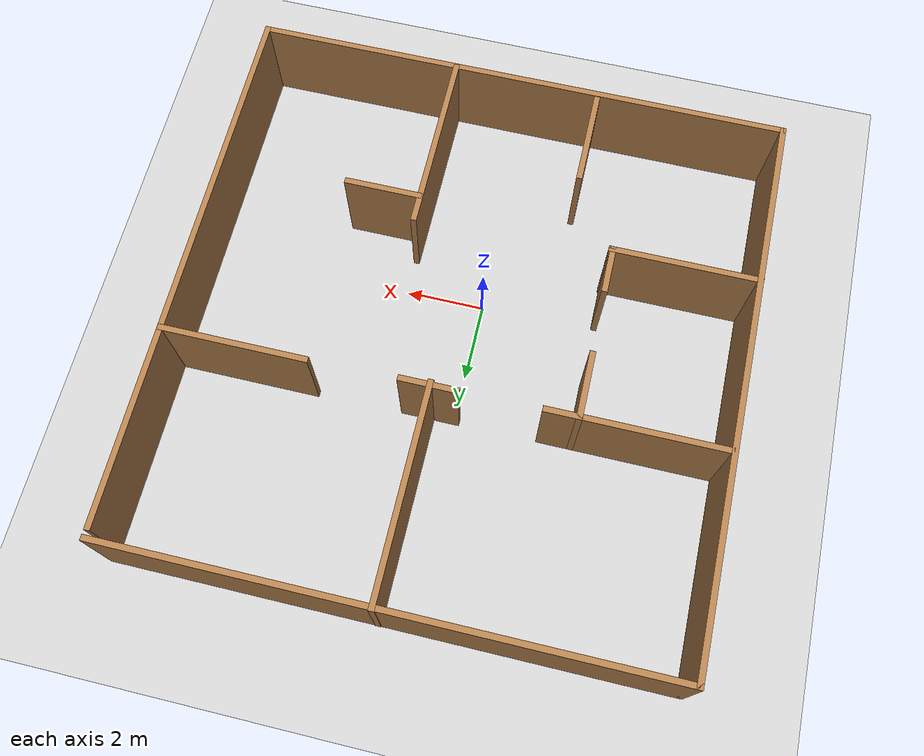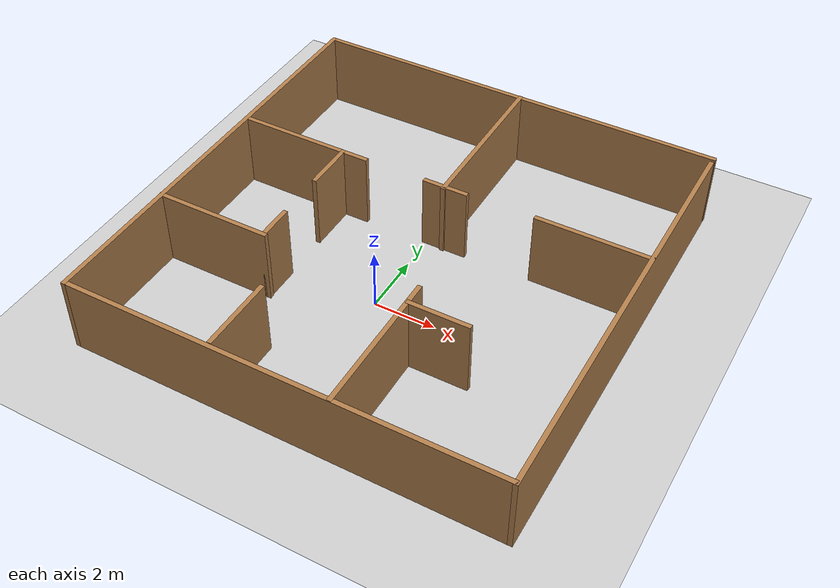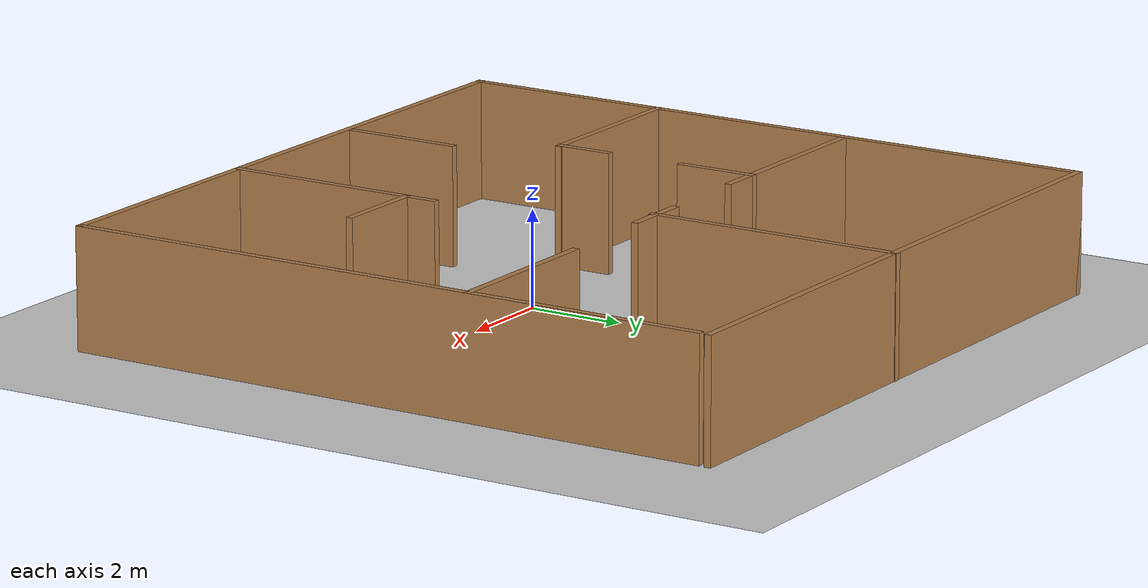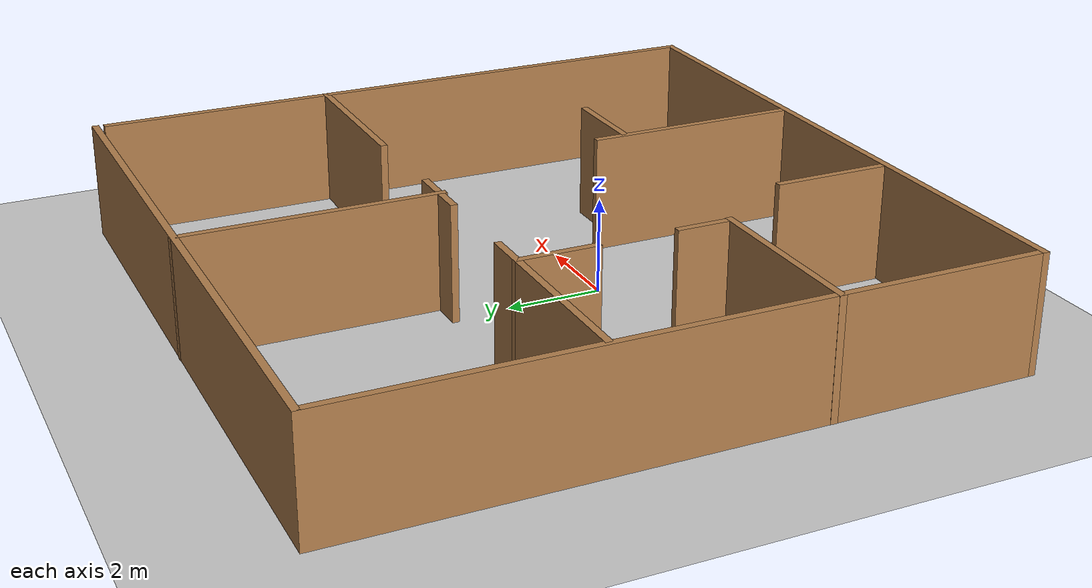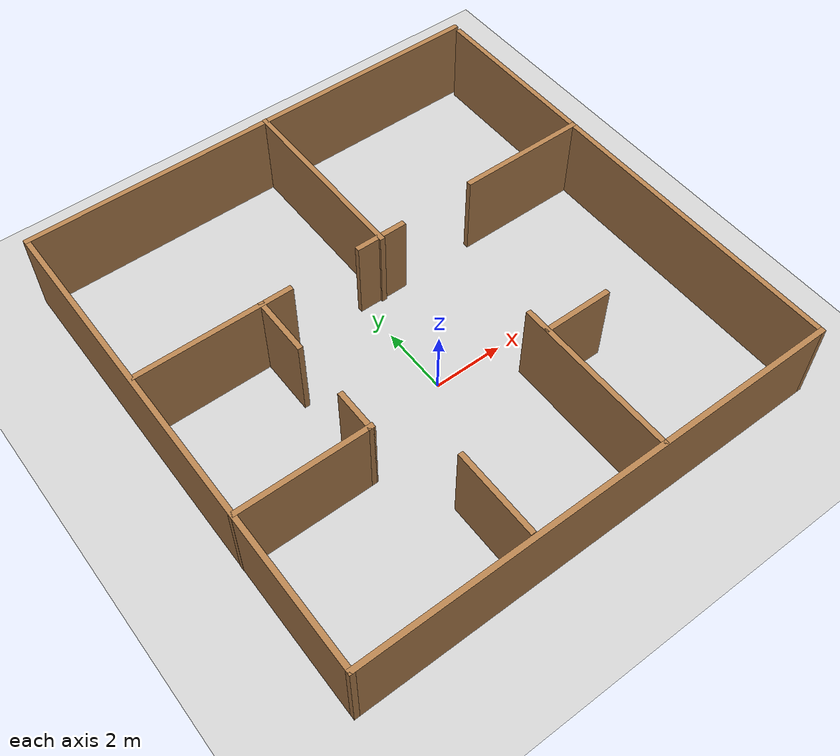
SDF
<sdf version="1.6">
 <world name="default">
  <light name="sun" type="directional">
   <pose>0 0 10 0 -0 0</pose>
   <diffuse>0.8 0.8 0.8 1</diffuse>
   <specular>0.2 0.2 0.2 1</specular>
   <attenuation>
    <range>1000</range>
    <constant>0.9</constant>
    <linear>0.01</linear>
    <quadratic>0.001</quadratic>
   </attenuation>
   <direction>-0.5 0.1 -0.9</direction>
  </light>
  <model name="ground_plane">
   <static>1</static>
   <link name="link">
    <collision name="collision">
     <geometry><plane><normal>0 0 1</normal><size>100 100</size></plane></geometry>
     <surface><friction><ode><mu>100</mu><mu2>50</mu2></ode></friction></surface>
    </collision>
    <visual name="visual">
     <cast_shadows>0</cast_shadows>
     <geometry><plane><normal>0 0 1</normal><size>100 100</size></plane></geometry>
     <material>
      <script><uri>file://media/materials/scripts/gazebo.material</uri><name>Gazebo/Grey</name></script>
     </material>
    </visual>
   </link>
  </model>
  <gravity>0 0 -9.8</gravity>
  <magnetic_field>6e-06 2.3e-05 -4.2e-05</magnetic_field>
  <atmosphere type="adiabatic"/>
  <physics name="default_physics" default="0" type="ode">
   <max_step_size>0.001</max_step_size>
   <real_time_factor>1</real_time_factor>
   <real_time_update_rate>1000</real_time_update_rate>
  </physics>
  <scene><ambient>0.4 0.4 0.4 1</ambient><background>0.7 0.7 0.7 1</background><shadows>1</shadows></scene>
  <audio><device>default</device></audio>
  <spherical_coordinates>
   <surface_model>EARTH_WGS84</surface_model>
   <latitude_deg>0</latitude_deg>
   <longitude_deg>0</longitude_deg>
   <elevation>0</elevation>
   <heading_deg>0</heading_deg>
  </spherical_coordinates>
  <model name="world3">
   <pose>0.288405 1.44366 0 0 -0 0</pose>
   <link name="Wall_0">
    <collision name="Wall_0_Collision">
     <geometry><box><size>14 0.15 2.5</size></box></geometry>
     <pose>0 0 1.25 0 -0 0</pose>
    </collision>
    <visual name="Wall_0_Visual">
     <pose>0 0 1.25 0 -0 0</pose>
     <geometry><box><size>14 0.15 2.5</size></box></geometry>
     <material>
      <script><uri>file://media/materials/scripts/gazebo.material</uri><name>Gazebo/Wood</name></script>
      <ambient>1 1 1 1</ambient>
     </material>
     <meta><layer>0</layer></meta>
    </visual>
    <pose>0.002691 -7.05609 0 0 -0 0</pose>
   </link>
   <link name="Wall_10">
    <collision name="Wall_10_Collision">
     <geometry><box><size>5.5 0.15 2.5</size></box></geometry>
     <pose>0 0 1.25 0 -0 0</pose>
    </collision>
    <visual name="Wall_10_Visual">
     <pose>0 0 1.25 0 -0 0</pose>
     <geometry><box><size>5.5 0.15 2.5</size></box></geometry>
     <material>
      <script><uri>file://media/materials/scripts/gazebo.material</uri><name>Gazebo/Wood</name></script>
      <ambient>1 1 1 1</ambient>
     </material>
     <meta><layer>0</layer></meta>
    </visual>
    <pose>0.291603 4.38109 0 0 -0 -1.5708</pose>
   </link>
   <link name="Wall_12">
    <collision name="Wall_12_Collision">
     <geometry><box><size>3.75 0.15 2.5</size></box></geometry>
     <pose>0 0 1.25 0 -0 0</pose>
    </collision>
    <visual name="Wall_12_Visual">
     <pose>0 0 1.25 0 -0 0</pose>
     <geometry><box><size>3.75 0.15 2.5</size></box></geometry>
     <material>
      <script><uri>file://media/materials/scripts/gazebo.material</uri><name>Gazebo/Wood</name></script>
      <ambient>1 1 1 1</ambient>
     </material>
     <meta><layer>0</layer></meta>
    </visual>
    <pose>5.12003 1.82516 0 0 -0 0</pose>
   </link>
   <link name="Wall_14">
    <collision name="Wall_14_Collision">
     <geometry><box><size>1.5 0.15 2.5</size></box></geometry>
     <pose>0 0 1.25 0 -0 0</pose>
    </collision>
    <visual name="Wall_14_Visual">
     <pose>0 0 1.25 0 -0 0</pose>
     <geometry><box><size>1.5 0.15 2.5</size></box></geometry>
     <material>
      <script><uri>file://media/materials/scripts/gazebo.material</uri><name>Gazebo/Wood</name></script>
      <ambient>1 1 1 1</ambient>
     </material>
     <meta><layer>0</layer></meta>
    </visual>
    <pose>0.324208 1.76398 0 0 -0 0</pose>
   </link>
   <link name="Wall_16">
    <collision name="Wall_16_Collision">
     <geometry><box><size>1.75 0.15 2.5</size></box></geometry>
     <pose>0 0 1.25 0 -0 0</pose>
    </collision>
    <visual name="Wall_16_Visual">
     <pose>0 0 1.25 0 -0 0</pose>
     <geometry><box><size>1.75 0.15 2.5</size></box></geometry>
     <material>
      <script><uri>file://media/materials/scripts/gazebo.material</uri><name>Gazebo/Wood</name></script>
      <ambient>1 1 1 1</ambient>
     </material>
     <meta><layer>0</layer></meta>
    </visual>
    <pose>-3.28745 0.933393 0 0 -0 -1.5708</pose>
   </link>
   <link name="Wall_18">
    <collision name="Wall_18_Collision">
     <geometry><box><size>3.84177 0.15 2.5</size></box></geometry>
     <pose>0 0 1.25 0 -0 0</pose>
    </collision>
    <visual name="Wall_18_Visual">
     <pose>0 0 1.25 0 -0 0</pose>
     <geometry><box><size>3.84177 0.15 2.5</size></box></geometry>
     <material>
      <script><uri>file://media/materials/scripts/gazebo.material</uri><name>Gazebo/Wood</name></script>
      <ambient>1 1 1 1</ambient>
     </material>
     <meta><layer>0</layer></meta>
    </visual>
    <pose>-5.08181 -2.70219 0 0 -0 0</pose>
   </link>
   <link name="Wall_20">
    <collision name="Wall_20_Collision">
     <geometry><box><size>1.25 0.15 2.5</size></box></geometry>
     <pose>0 0 1.25 0 -0 0</pose>
    </collision>
    <visual name="Wall_20_Visual">
     <pose>0 0 1.25 0 -0 0</pose>
     <geometry><box><size>1.25 0.15 2.5</size></box></geometry>
     <material>
      <script><uri>file://media/materials/scripts/gazebo.material</uri><name>Gazebo/Wood</name></script>
      <ambient>1 1 1 1</ambient>
     </material>
     <meta><layer>0</layer></meta>
    </visual>
    <pose>-3.26651 -2.15219 0 0 -0 1.5708</pose>
   </link>
   <link name="Wall_22">
    <collision name="Wall_22_Collision">
     <geometry><box><size>4.75 0.15 2.5</size></box></geometry>
     <pose>0 0 1.25 0 -0 0</pose>
    </collision>
    <visual name="Wall_22_Visual">
     <pose>0 0 1.25 0 -0 0</pose>
     <geometry><box><size>4.75 0.15 2.5</size></box></geometry>
     <material>
      <script><uri>file://media/materials/scripts/gazebo.material</uri><name>Gazebo/Wood</name></script>
      <ambient>1 1 1 1</ambient>
     </material>
     <meta><layer>0</layer></meta>
    </visual>
    <pose>1.72507 -4.73243 0 0 -0 -1.5708</pose>
   </link>
   <link name="Wall_25">
    <collision name="Wall_25_Collision">
     <geometry><box><size>2 0.15 2.5</size></box></geometry>
     <pose>0 0 1.25 0 -0 0</pose>
    </collision>
    <visual name="Wall_25_Visual">
     <pose>0 0 1.25 0 -0 0</pose>
     <geometry><box><size>2 0.15 2.5</size></box></geometry>
     <material>
      <script><uri>file://media/materials/scripts/gazebo.material</uri><name>Gazebo/Wood</name></script>
      <ambient>1 1 1 1</ambient>
     </material>
     <meta><layer>0</layer></meta>
    </visual>
    <pose>2.68525 -3.06565 0 0 -0 0</pose>
   </link>
   <link name="Wall_27">
    <collision name="Wall_27_Collision">
     <geometry><box><size>2.5 0.15 2.5</size></box></geometry>
     <pose>0 0 1.25 0 -0 0</pose>
    </collision>
    <visual name="Wall_27_Visual">
     <pose>0 0 1.25 0 -0 0</pose>
     <geometry><box><size>2.5 0.15 2.5</size></box></geometry>
     <material>
      <script><uri>file://media/materials/scripts/gazebo.material</uri><name>Gazebo/Wood</name></script>
      <ambient>1 1 1 1</ambient>
     </material>
     <meta><layer>0</layer></meta>
    </visual>
    <pose>-2.07423 -5.71816 0 0 -0 -1.5708</pose>
   </link>
   <link name="Wall_3">
    <collision name="Wall_3_Collision">
     <geometry><box><size>14 0.15 2.5</size></box></geometry>
     <pose>0 0 1.25 0 -0 0</pose>
    </collision>
    <visual name="Wall_3_Visual">
     <pose>0 0 1.25 0 -0 0</pose>
     <geometry><box><size>14 0.15 2.5</size></box></geometry>
     <material>
      <script><uri>file://media/materials/scripts/gazebo.material</uri><name>Gazebo/Wood</name></script>
      <ambient>1 1 1 1</ambient>
     </material>
     <meta><layer>0</layer></meta>
    </visual>
    <pose>6.92769 -0.131092 0 0 -0 1.5708</pose>
   </link>
   <link name="Wall_5">
    <collision name="Wall_5_Collision">
     <geometry><box><size>14.25 0.15 2.5</size></box></geometry>
     <pose>0 0 1.25 0 -0 0</pose>
    </collision>
    <visual name="Wall_5_Visual">
     <pose>0 0 1.25 0 -0 0</pose>
     <geometry><box><size>14.25 0.15 2.5</size></box></geometry>
     <material>
      <script><uri>file://media/materials/scripts/gazebo.material</uri><name>Gazebo/Wood</name></script>
      <ambient>1 1 1 1</ambient>
     </material>
     <meta><layer>0</layer></meta>
    </visual>
    <pose>-6.92231 -0.006092 0 0 -0 1.5708</pose>
   </link>
   <link name="Wall_6">
    <collision name="Wall_6_Collision">
     <geometry><box><size>14 0.15 2.5</size></box></geometry>
     <pose>0 0 1.25 0 -0 0</pose>
    </collision>
    <visual name="Wall_6_Visual">
     <pose>0 0 1.25 0 -0 0</pose>
     <geometry><box><size>14 0.15 2.5</size></box></geometry>
     <material>
      <script><uri>file://media/materials/scripts/gazebo.material</uri><name>Gazebo/Wood</name></script>
      <ambient>1 1 1 1</ambient>
     </material>
     <meta><layer>0</layer></meta>
    </visual>
    <pose>0.002691 7.04391 0 0 -0 0</pose>
   </link>
   <link name="Wall_8">
    <collision name="Wall_8_Collision">
     <geometry><box><size>4.5 0.15 2.5</size></box></geometry>
     <pose>0 0 1.25 0 -0 0</pose>
    </collision>
    <visual name="Wall_8_Visual">
     <pose>0 0 1.25 0 -0 0</pose>
     <geometry><box><size>4.5 0.15 2.5</size></box></geometry>
     <material>
      <script><uri>file://media/materials/scripts/gazebo.material</uri><name>Gazebo/Wood</name></script>
      <ambient>1 1 1 1</ambient>
     </material>
     <meta><layer>0</layer></meta>
    </visual>
    <pose>-4.66092 1.73339 0 0 -0 0</pose>
   </link>
   <static>1</static>
  </model>
 </world>
</sdf>
